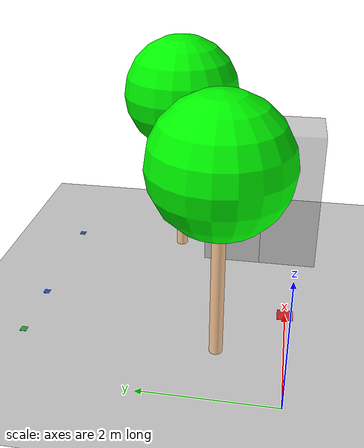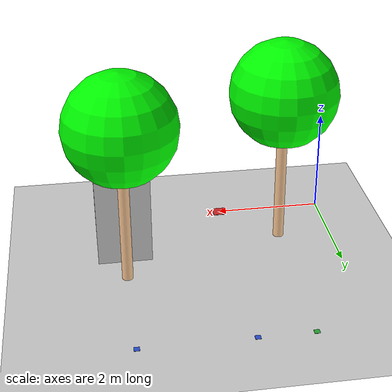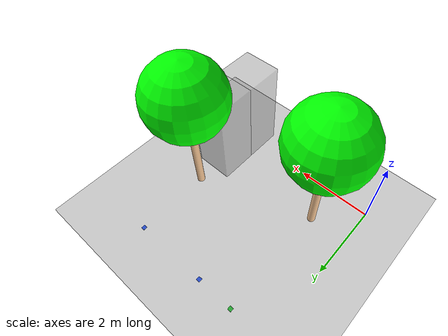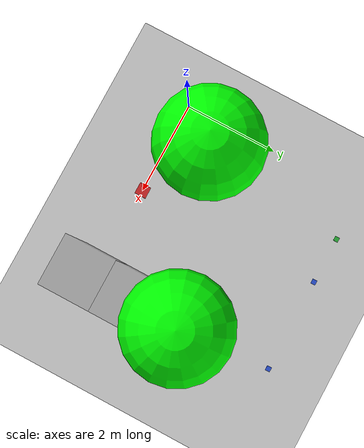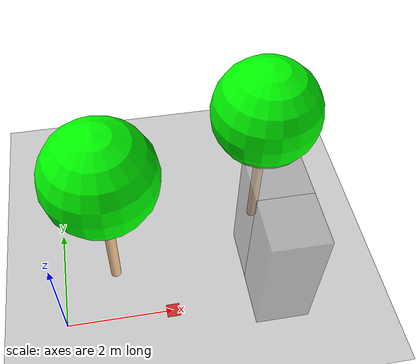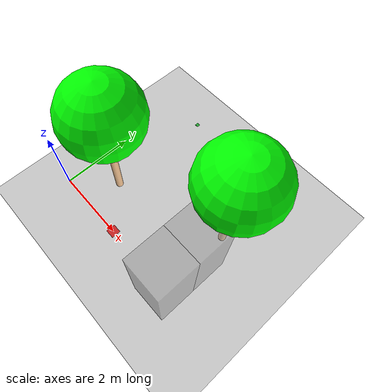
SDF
<?xml version="1.0"?>
<sdf version='1.5'>
  <world name='default'>

    <gui fullscreen='0'>
      <camera name='user_camera'>
        <pose frame=''>2.70464 -1.54753 3.05779 0 0.339643 2.2362</pose>
        <view_controller>orbit</view_controller>
        <projection_type>perspective</projection_type>
      </camera>
    </gui>

    <spherical_coordinates>
      <latitude_deg>46.414296</latitude_deg>
      <longitude_deg>6.928084</longitude_deg>
    </spherical_coordinates>

    <physics type="ode">
      <real_time_update_rate>1000</real_time_update_rate>
      <max_step_size>0.001</max_step_size>
      <real_time_factor>1.0</real_time_factor>
      <max_contacts>20</max_contacts>
      <gravity>0 0 -9.81</gravity>
      <magnetic_field>0.1062e-6 20.8038e-6 -43.2881e-6</magnetic_field>
      <ode>
        <solver>
          <type>world</type>
          <min_step_size>0.0001</min_step_size>
          <iters>50</iters>
          <precon_iters>0</precon_iters>
          <sor>1.4</sor>
          <use_dynamic_moi_rescaling>1</use_dynamic_moi_rescaling>
        </solver>
        <constraints>
          <cfm>0</cfm>
          <erp>0.2</erp>
          <contact_max_correcting_vel>100.0</contact_max_correcting_vel>
          <contact_surface_layer>0.001</contact_surface_layer>
        </constraints>
      </ode>
    </physics>

    <atmosphere type="adiabatic">
      <temperature>298.15</temperature>
      <pressure>101325</pressure>
      <temperature_gradient>-0.0065</temperature_gradient>
    </atmosphere>

    <plugin name="fwman" filename="libsphinx_fwman.so">
      <spawn_point name="default">
        <pose>1 0 0.1 0 0 0</pose>
      </spawn_point>
    </plugin>

    <!--Scene description-->
    <include>
      <uri>model://ground_plane</uri>
    </include>

        <include>
          <name>start</name>
          <uri>model://ground_red</uri>
          <pose>2 0 0.0 0 0 0</pose>
        </include>

        <include>
          <name>goal</name>
          <uri>model://ground_goal</uri>
          <pose>1 4 0.0 0 0 0</pose>
        </include>

        <include>
          <name>PX0</name>
          <uri>model://ground_tour</uri>
          <pose>2 4 0.0 0 0 0</pose>
        </include>

        <include>
          <name>PX1</name>
          <uri>model://ground_tour</uri>
          <pose>4 4 0.0 0 0 0</pose>
        </include>

        <include>
          <name>T0_canopy</name>
          <uri>model://tree_canopy</uri>
          <pose>1 1 2.5 0 0 0</pose>
        </include>

        <include>
          <name>T0_wood</name>
          <uri>model://vertical_bar</uri>
          <pose>1 1 0.0 0 0 0</pose>
        </include>

        <include>
          <name>T1_canopy</name>
          <uri>model://tree_canopy</uri>
          <pose>4 2 2.5 0 0 0</pose>
        </include>

        <include>
          <name>T1_wood</name>
          <uri>model://vertical_bar</uri>
          <pose>4 2 0.0 0 0 0</pose>
        </include>

        <include>
          <name>W00</name>
          <uri>model://wall_box</uri>
          <pose>4 0 0.0 0 0 0</pose>
        </include>

        <include>
          <name>W01</name>
          <uri>model://wall_box</uri>
          <pose>4 1 0.0 0 0 0</pose>
        </include>

    <scene>
      <ambient>0.4 0.4 0.4 1</ambient>
      <background>0.7 0.7 0.7 1</background>
      <shadows>1</shadows>
    </scene>
    <light type="directional" name="sun">
      <cast_shadows>true</cast_shadows>
      <pose>0 0 400 0 0 0</pose>
      <diffuse>0.8 0.8 0.8 1</diffuse>
      <specular>0.2 0.2 0.2 1</specular>
      <attenuation>
        <range>1000</range>
        <constant>0.9</constant>
        <linear>0.01</linear>
        <quadratic>0.001</quadratic>
      </attenuation>
      <direction>-0.5 0.1 -0.9</direction>
    </light>
  </world>
</sdf>

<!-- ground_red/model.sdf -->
<sdf version='1.5'>
  <model name='ground_red'>
    <link name='link'>
      <pose>0 0 0.0375 0 -0 0</pose>
      <inertial>
        <mass>0.1467</mass>
        <inertia>
          <ixx>8.252e-05</ixx>
          <ixy>0</ixy>
          <ixz>0</ixz>
          <iyy>8.252e-05</iyy>
          <iyz>0</iyz>
          <izz>8.252e-05</izz>
        </inertia>
        <pose>0 0 0 0 -0 0</pose>
      </inertial>
      <self_collide>0</self_collide>
      <kinematic>0</kinematic>
      <velocity_decay>
        <linear>0</linear>
        <angular>0.005</angular>
      </velocity_decay>
      <gravity>1</gravity>
      <visual name='visual'>
        <geometry>
          <box>
            <size>0.25 0.25 0.005</size>
          </box>
        </geometry>
        <material>
          <script>
            <uri>file://media/materials/scripts/gazebo.material</uri>
            <name>Gazebo/Red</name>
          </script>
          <shader type='pixel'>
            <normal_map>__default__</normal_map>
          </shader>
          <ambient>1 0 0 1</ambient>
          <diffuse>1 0 0 1</diffuse>
          <specular>0.1 0.1 0.1 1</specular>
          <emissive>0 0 0 1</emissive>
        </material>
        <pose>0 0 -0.035 0 -0 0</pose>
        <cast_shadows>1</cast_shadows>
        <transparency>0</transparency>
      </visual>
      <collision name='collision'>
        <laser_retro>0</laser_retro>
        <max_contacts>10</max_contacts>
        <pose>0 0 0 0 -0 0</pose>
        <geometry>
          <sphere>
            <radius>0.0375</radius>
          </sphere>
        </geometry>
        <surface>
          <friction>
            <ode>
              <mu>1</mu>
              <mu2>1</mu2>
              <fdir1>0 0 0</fdir1>
              <slip1>0</slip1>
              <slip2>0</slip2>
            </ode>
            <torsional>
              <coefficient>1</coefficient>
              <patch_radius>0</patch_radius>
              <surface_radius>0</surface_radius>
              <use_patch_radius>1</use_patch_radius>
              <ode>
                <slip>0</slip>
              </ode>
            </torsional>
          </friction>
          <bounce>
            <restitution_coefficient>0</restitution_coefficient>
            <threshold>1e+06</threshold>
          </bounce>
          <contact>
            <collide_without_contact>0</collide_without_contact>
            <collide_without_contact_bitmask>1</collide_without_contact_bitmask>
            <collide_bitmask>1</collide_bitmask>
            <ode>
              <soft_cfm>0</soft_cfm>
              <soft_erp>0.2</soft_erp>
              <kp>1e+13</kp>
              <kd>1</kd>
              <max_vel>0.01</max_vel>
              <min_depth>0</min_depth>
            </ode>
            <bullet>
              <split_impulse>1</split_impulse>
              <split_impulse_penetration_threshold>-0.01</split_impulse_penetration_threshold>
              <soft_cfm>0</soft_cfm>
              <soft_erp>0.2</soft_erp>
              <kp>1e+13</kp>
              <kd>1</kd>
            </bullet>
          </contact>
        </surface>
      </collision>
    </link>
    <static>0</static>
    <allow_auto_disable>1</allow_auto_disable>
  </model>
</sdf>

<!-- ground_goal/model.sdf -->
<sdf version='1.5'>
  <model name='ground_goal'>
    <link name='link'>
      <pose>0 0 0.0375 0 -0 0</pose>
      <inertial>
        <mass>0.1467</mass>
        <inertia>
          <ixx>8.252e-05</ixx>
          <ixy>0</ixy>
          <ixz>0</ixz>
          <iyy>8.252e-05</iyy>
          <iyz>0</iyz>
          <izz>8.252e-05</izz>
        </inertia>
        <pose>0 0 0 0 -0 0</pose>
      </inertial>
      <self_collide>0</self_collide>
      <kinematic>0</kinematic>
      <velocity_decay>
        <linear>0</linear>
        <angular>0.005</angular>
      </velocity_decay>
      <gravity>1</gravity>
      <visual name='visual'>
        <geometry>
          <box>
            <size>0.1 0.1 0.005</size>
          </box>
        </geometry>
        <material>
          <script>
            <uri>file://media/materials/scripts/gazebo.material</uri>
            <name>Gazebo/Green</name>
          </script>
          <shader type='pixel'>
            <normal_map>__default__</normal_map>
          </shader>
          <ambient>0 1 0 1</ambient>
          <diffuse>0 1 0 1</diffuse>
          <specular>0 1 0 1</specular>
          <emissive>0 0 0 1</emissive>
        </material>
        <pose>0 0 -0.035 0 -0 0</pose>
        <cast_shadows>1</cast_shadows>
        <transparency>0</transparency>
      </visual>
      <collision name='collision'>
        <laser_retro>0</laser_retro>
        <max_contacts>10</max_contacts>
        <pose>0 0 -0.035 0 -0 0</pose>
        <geometry>
          <box>
            <size>0.1 0.1 0.005</size>
          </box>
        </geometry>
        <surface>
          <friction>
            <ode>
              <mu>1</mu>
              <mu2>1</mu2>
              <fdir1>0 0 0</fdir1>
              <slip1>0</slip1>
              <slip2>0</slip2>
            </ode>
            <torsional>
              <coefficient>1</coefficient>
              <patch_radius>0</patch_radius>
              <surface_radius>0</surface_radius>
              <use_patch_radius>1</use_patch_radius>
              <ode>
                <slip>0</slip>
              </ode>
            </torsional>
          </friction>
          <bounce>
            <restitution_coefficient>0</restitution_coefficient>
            <threshold>1e+06</threshold>
          </bounce>
          <contact>
            <collide_without_contact>0</collide_without_contact>
            <collide_without_contact_bitmask>1</collide_without_contact_bitmask>
            <collide_bitmask>1</collide_bitmask>
            <ode>
              <soft_cfm>0</soft_cfm>
              <soft_erp>0.2</soft_erp>
              <kp>1e+13</kp>
              <kd>1</kd>
              <max_vel>0.01</max_vel>
              <min_depth>0</min_depth>
            </ode>
            <bullet>
              <split_impulse>1</split_impulse>
              <split_impulse_penetration_threshold>-0.01</split_impulse_penetration_threshold>
              <soft_cfm>0</soft_cfm>
              <soft_erp>0.2</soft_erp>
              <kp>1e+13</kp>
              <kd>1</kd>
            </bullet>
          </contact>
        </surface>
      </collision>
    </link>
    <static>0</static>
    <allow_auto_disable>1</allow_auto_disable>
  </model>
</sdf>

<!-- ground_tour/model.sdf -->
<sdf version='1.5'>
  <model name='ground_tour'>
    <link name='link'>
      <pose>0 0 0.0375 0 -0 0</pose>
      <inertial>
        <mass>0.1467</mass>
        <inertia>
          <ixx>8.252e-05</ixx>
          <ixy>0</ixy>
          <ixz>0</ixz>
          <iyy>8.252e-05</iyy>
          <iyz>0</iyz>
          <izz>8.252e-05</izz>
        </inertia>
        <pose>0 0 0 0 -0 0</pose>
      </inertial>
      <self_collide>0</self_collide>
      <kinematic>0</kinematic>
      <velocity_decay>
        <linear>0</linear>
        <angular>0.005</angular>
      </velocity_decay>
      <gravity>1</gravity>
      <visual name='visual'>
        <geometry>
          <box>
            <size>0.1 0.1 0.005</size>
          </box>
        </geometry>
        <material>
          <script>
            <uri>file://media/materials/scripts/gazebo.material</uri>
            <name>Gazebo/Blue</name>
          </script>
          <shader type='pixel'>
            <normal_map>__default__</normal_map>
          </shader>
          <ambient>0 0.1 0.9 1</ambient>
          <diffuse>0 0.5 0.5 1</diffuse>
          <specular>0 0 0 1</specular>
          <emissive>0 0 0 1</emissive>
        </material>
        <pose>0 0 -0.035 0 -0 0</pose>
        <cast_shadows>1</cast_shadows>
        <transparency>0</transparency>
      </visual>
      <collision name='collision'>
        <laser_retro>0</laser_retro>
        <max_contacts>10</max_contacts>
        <pose>0 0 -0.035 0 -0 0</pose>
        <geometry>
          <box>
            <size>0.1 0.1 0.005</size>
          </box>
        </geometry>
        <surface>
          <friction>
            <ode>
              <mu>1</mu>
              <mu2>1</mu2>
              <fdir1>0 0 0</fdir1>
              <slip1>0</slip1>
              <slip2>0</slip2>
            </ode>
            <torsional>
              <coefficient>1</coefficient>
              <patch_radius>0</patch_radius>
              <surface_radius>0</surface_radius>
              <use_patch_radius>1</use_patch_radius>
              <ode>
                <slip>0</slip>
              </ode>
            </torsional>
          </friction>
          <bounce>
            <restitution_coefficient>0</restitution_coefficient>
            <threshold>1e+06</threshold>
          </bounce>
          <contact>
            <collide_without_contact>0</collide_without_contact>
            <collide_without_contact_bitmask>1</collide_without_contact_bitmask>
            <collide_bitmask>1</collide_bitmask>
            <ode>
              <soft_cfm>0</soft_cfm>
              <soft_erp>0.2</soft_erp>
              <kp>1e+13</kp>
              <kd>1</kd>
              <max_vel>0.01</max_vel>
              <min_depth>0</min_depth>
            </ode>
            <bullet>
              <split_impulse>1</split_impulse>
              <split_impulse_penetration_threshold>-0.01</split_impulse_penetration_threshold>
              <soft_cfm>0</soft_cfm>
              <soft_erp>0.2</soft_erp>
              <kp>1e+13</kp>
              <kd>1</kd>
            </bullet>
          </contact>
        </surface>
      </collision>
    </link>
    <static>0</static>
    <allow_auto_disable>1</allow_auto_disable>
  </model>
</sdf>

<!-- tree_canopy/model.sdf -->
<sdf version='1.5'>
  <model name='tree_canopy'>
    <link name='link'>
      <pose>0 0 0 0 -0 0</pose>
      <inertial>
        <mass>1</mass>
        <inertia>
          <ixx>0.1</ixx>
          <ixy>0</ixy>
          <ixz>0</ixz>
          <iyy>0.1</iyy>
          <iyz>0</iyz>
          <izz>0.1</izz>
        </inertia>
        <pose>0 0 0 0 -0 0</pose>
      </inertial>
      <self_collide>0</self_collide>
      <kinematic>0</kinematic>
      <gravity>0</gravity>
      <visual name='visual'>
        <geometry>
          <sphere>
            <radius>1</radius>
          </sphere>
        </geometry>
        <material>
          <script>
            <name>Gazebo/Grey</name>
            <uri>file://media/materials/scripts/gazebo.material</uri>
          </script>
          <shader type='pixel'>
            <normal_map>__default__</normal_map>
          </shader>
          <ambient>0 1 0 1</ambient>
          <diffuse>0 1 0 1</diffuse>
          <specular>0 1 0 1</specular>
          <emissive>0 0 0 1</emissive>
        </material>
        <pose>0 0 0.5 0 -0 0</pose>
        <cast_shadows>1</cast_shadows>
        <transparency>0</transparency>
      </visual>
      <collision name='collision'>
        <laser_retro>0</laser_retro>
        <max_contacts>10</max_contacts>
        <pose>0 0 0.5 0 -0 0</pose>
        <geometry>
          <sphere>
            <radius>1</radius>
          </sphere>
        </geometry>
        <surface>
          <friction>
            <ode>
              <mu>1</mu>
              <mu2>1</mu2>
              <fdir1>0 0 0</fdir1>
              <slip1>0</slip1>
              <slip2>0</slip2>
            </ode>
            <torsional>
              <coefficient>1</coefficient>
              <patch_radius>0</patch_radius>
              <surface_radius>0</surface_radius>
              <use_patch_radius>1</use_patch_radius>
              <ode>
                <slip>0</slip>
              </ode>
            </torsional>
          </friction>
          <bounce>
            <restitution_coefficient>0</restitution_coefficient>
            <threshold>1e+06</threshold>
          </bounce>
          <contact>
            <collide_without_contact>0</collide_without_contact>
            <collide_without_contact_bitmask>1</collide_without_contact_bitmask>
            <collide_bitmask>1</collide_bitmask>
            <ode>
              <soft_cfm>0</soft_cfm>
              <soft_erp>0.2</soft_erp>
              <kp>1e+13</kp>
              <kd>1</kd>
              <max_vel>0.01</max_vel>
              <min_depth>0</min_depth>
            </ode>
            <bullet>
              <split_impulse>1</split_impulse>
              <split_impulse_penetration_threshold>-0.01</split_impulse_penetration_threshold>
              <soft_cfm>0</soft_cfm>
              <soft_erp>0.2</soft_erp>
              <kp>1e+13</kp>
              <kd>1</kd>
            </bullet>
          </contact>
        </surface>
      </collision>
    </link>
    <static>0</static>
    <allow_auto_disable>1</allow_auto_disable>
  </model>
</sdf>

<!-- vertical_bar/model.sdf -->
<sdf version='1.5'>
  <model name='vertical_bar'>
    <link name='link'>
      <pose>0 0 0 0 -0 0</pose>
      <inertial>
        <mass>1</mass>
        <inertia>
          <ixx>0.145833</ixx>
          <ixy>0</ixy>
          <ixz>0</ixz>
          <iyy>0.145833</iyy>
          <iyz>0</iyz>
          <izz>0.125</izz>
        </inertia>
        <pose>0 0 0 0 -0 0</pose>
      </inertial>
      <self_collide>0</self_collide>
      <kinematic>0</kinematic>
      <gravity>1</gravity>
      <visual name='visual'>
        <geometry>
          <cylinder>
            <radius>0.1</radius>
            <length>2</length>
          </cylinder>
        </geometry>
        <material>
          <script>
            <name>Gazebo/Grey</name>
            <uri>file://media/materials/scripts/gazebo.material</uri>
          </script>
          <shader type='pixel'>
            <normal_map>__default__</normal_map>
          </shader>
          <ambient>1 0.8 0.6 1</ambient>
          <diffuse>1 0.8 0.6 1</diffuse>
          <specular>1 0.8 0.6 1</specular>
          <emissive>0 0 0 1</emissive>
        </material>
        <pose>0 0 1 0 -0 0</pose>
        <cast_shadows>1</cast_shadows>
        <transparency>0</transparency>
      </visual>
      <collision name='collision'>
        <laser_retro>0</laser_retro>
        <max_contacts>10</max_contacts>
        <pose>0 0 1 0 -0 0</pose>
        <geometry>
          <cylinder>
            <radius>0.1</radius>
            <length>2</length>
          </cylinder>
        </geometry>
        <surface>
          <friction>
            <ode>
              <mu>1</mu>
              <mu2>1</mu2>
              <fdir1>0 0 0</fdir1>
              <slip1>0</slip1>
              <slip2>0</slip2>
            </ode>
            <torsional>
              <coefficient>1</coefficient>
              <patch_radius>0</patch_radius>
              <surface_radius>0</surface_radius>
              <use_patch_radius>1</use_patch_radius>
              <ode>
                <slip>0</slip>
              </ode>
            </torsional>
          </friction>
          <bounce>
            <restitution_coefficient>0</restitution_coefficient>
            <threshold>1e+06</threshold>
          </bounce>
          <contact>
            <collide_without_contact>0</collide_without_contact>
            <collide_without_contact_bitmask>1</collide_without_contact_bitmask>
            <collide_bitmask>1</collide_bitmask>
            <ode>
              <soft_cfm>0</soft_cfm>
              <soft_erp>0.2</soft_erp>
              <kp>1e+13</kp>
              <kd>1</kd>
              <max_vel>0.01</max_vel>
              <min_depth>0</min_depth>
            </ode>
            <bullet>
              <split_impulse>1</split_impulse>
              <split_impulse_penetration_threshold>-0.01</split_impulse_penetration_threshold>
              <soft_cfm>0</soft_cfm>
              <soft_erp>0.2</soft_erp>
              <kp>1e+13</kp>
              <kd>1</kd>
            </bullet>
          </contact>
        </surface>
      </collision>
    </link>
    <static>1</static>
    <allow_auto_disable>1</allow_auto_disable>
  </model>
</sdf>

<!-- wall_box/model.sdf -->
<sdf version='1.6'>
  <model name='wall_box2'>
    <link name='link'>
      <pose frame=''>0 0 0 0 -0 0</pose>
      <inertial>
        <mass>1</mass>
        <inertia>
          <ixx>0.166667</ixx>
          <ixy>0</ixy>
          <ixz>0</ixz>
          <iyy>0.166667</iyy>
          <iyz>0</iyz>
          <izz>0.166667</izz>
        </inertia>
        <pose frame=''>0 0 0 0 -0 0</pose>
      </inertial>
      <self_collide>0</self_collide>
      <kinematic>0</kinematic>
      <gravity>1</gravity>
      <visual name='visual'>
        <geometry>
          <box>
            <size>1 1 2.5</size>
          </box>
        </geometry>
        <material>
          <script>
            <name>Gazebo/Grey</name>
            <uri>file://media/materials/scripts/gazebo.material</uri>
          </script>
          <ambient>0.3 0.3 0.3 1</ambient>
          <diffuse>0.7 0.7 0.7 1</diffuse>
          <specular>0.01 0.01 0.01 1</specular>
          <emissive>0 0 0 1</emissive>
          <shader type='vertex'>
            <normal_map>__default__</normal_map>
          </shader>
        </material>
        <pose frame=''>0 0 1.25 0 -0 0</pose>
        <cast_shadows>1</cast_shadows>
        <transparency>0.5</transparency>
      </visual>
      <collision name='collision'>
        <laser_retro>0</laser_retro>
        <max_contacts>10</max_contacts>
        <pose frame=''>0 0 1.25 0 -0 0</pose>
        <geometry>
          <box>
            <size>1 1 2.5</size>
          </box>
        </geometry>
        <surface>
          <friction>
            <ode>
              <mu>1</mu>
              <mu2>1</mu2>
              <fdir1>0 0 0</fdir1>
              <slip1>0</slip1>
              <slip2>0</slip2>
            </ode>
            <torsional>
              <coefficient>1</coefficient>
              <patch_radius>0</patch_radius>
              <surface_radius>0</surface_radius>
              <use_patch_radius>1</use_patch_radius>
              <ode>
                <slip>0</slip>
              </ode>
            </torsional>
          </friction>
          <bounce>
            <restitution_coefficient>0</restitution_coefficient>
            <threshold>1e+06</threshold>
          </bounce>
          <contact>
            <collide_without_contact>0</collide_without_contact>
            <collide_without_contact_bitmask>1</collide_without_contact_bitmask>
            <collide_bitmask>1</collide_bitmask>
            <ode>
              <soft_cfm>0</soft_cfm>
              <soft_erp>0.2</soft_erp>
              <kp>1e+13</kp>
              <kd>1</kd>
              <max_vel>0.01</max_vel>
              <min_depth>0</min_depth>
            </ode>
            <bullet>
              <split_impulse>1</split_impulse>
              <split_impulse_penetration_threshold>-0.01</split_impulse_penetration_threshold>
              <soft_cfm>0</soft_cfm>
              <soft_erp>0.2</soft_erp>
              <kp>1e+13</kp>
              <kd>1</kd>
            </bullet>
          </contact>
        </surface>
      </collision>
    </link>
    <static>0</static>
    <allow_auto_disable>1</allow_auto_disable>
  </model>
</sdf>
